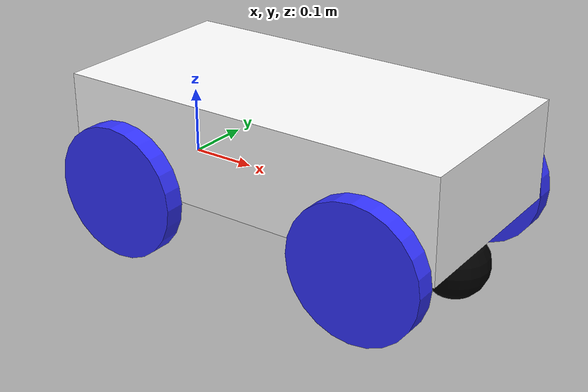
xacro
<?xml version="1.0"?>
<robot xmlns:xacro="http://www.ros.org/wiki/xacro">

    <xacro:include filename="inertial_macros.xacro"/>

    <material name="white"><color rgba="1 1 1 1"/></material>
    <material name="orange"><color rgba="1 0.3 0.1 1"/></material>
    <material name="blue"><color rgba="0.2 0.2 1 1"/></material>
    <material name="black"><color rgba="0 0 0 1"/></material>

    <link name="base_link"></link>

    <joint name="base_footprint_joint" type="fixed">
        <parent link="base_link"/>
        <child link="base_footprint"/>
        <origin xyz="0 0 0" rpy="0 0 0"/>
    </joint>

    <link name="base_footprint"></link>

    <joint name="chassis_joint" type="fixed">
        <parent link="base_link"/>
        <child link="chassis_link"/>
        <origin xyz="-0.1 0 0"/>
    </joint>

    <link name="chassis_link">
        <visual>
            <origin xyz="0.3 0 0.075"/>
            <geometry>
                <box size="0.6 0.3 0.15"/>
            </geometry>
            <material name="white"/>
        </visual>
        <collision>
            <origin xyz="0.3 0 0.075"/>
            <geometry>
                <box size="0.6 0.3 0.15"/>
            </geometry>
        </collision>
        <xacro:inertial_box mass="0.5" x="0.6" y="0.3" z="0.15">
            <origin xyz="0.3 0 0.075" rpy="0 0 0"/>
        </xacro:inertial_box>
    </link>

    <joint name="front_left_wheel_joint" type="continuous">
        <parent link="chassis_link"/>
        <child link="front_left_wheel_link"/>
        <origin xyz="0.5 0.170 0" rpy="${-pi/2} 0 0"/>
        <axis xyz="0 0 1"/>
    </joint>

    <link name="front_left_wheel_link">
        <visual>
            <geometry>
                <cylinder length="0.03" radius="0.1"/>
            </geometry>
            <material name="blue"/>
        </visual>
        <collision>
            <geometry>
                <sphere radius="0.1"/>
            </geometry>
        </collision>
        <xacro:inertial_cylinder mass="0.1" length="0.03" radius="0.1">
            <origin xyz="0 0 0" rpy="0 0 0"/>
        </xacro:inertial_cylinder>
    </link>

    <joint name="front_right_wheel_joint" type="continuous">
        <parent link="chassis_link"/>
        <child link="front_right_wheel_link"/>
        <origin xyz="0.5 -0.170 0" rpy="${pi/2} 0 0"/>
        <axis xyz="0 0 -1"/>
    </joint>

    <link name="front_right_wheel_link">
        <visual>
            <geometry>
                <cylinder length="0.03" radius="0.1"/>
            </geometry>
            <material name="blue"/>
        </visual>
        <collision>
            <geometry>
                <sphere radius="0.1"/>
            </geometry>
        </collision>
        <xacro:inertial_cylinder mass="0.1" length="0.03" radius="0.1">
            <origin xyz="0 0 0" rpy="0 0 0"/>
        </xacro:inertial_cylinder>
    </link>

    <joint name="rear_left_wheel_joint" type="continuous">
        <parent link="chassis_link"/>
        <child link="rear_left_wheel_link"/>
        <origin xyz="0.1 0.170 0" rpy="${-pi/2} 0 0"/>
        <axis xyz="0 0 1"/>
    </joint>

    <link name="rear_left_wheel_link">
        <visual>
            <geometry>
                <cylinder length="0.03" radius="0.1"/>
            </geometry>
            <material name="blue"/>
        </visual>
        <collision>
            <geometry>
                <sphere radius="0.1"/>
            </geometry>
        </collision>
        <xacro:inertial_cylinder mass="0.1" length="0.03" radius="0.1">
            <origin xyz="0 0 0" rpy="0 0 0"/>
        </xacro:inertial_cylinder>
    </link>

    <joint name="rear_right_wheel_joint" type="continuous">
        <parent link="chassis_link"/>
        <child link="rear_right_wheel_link"/>
        <origin xyz="0.1 -0.170 0" rpy="${pi/2} 0 0"/>
        <axis xyz="0 0 -1"/>
    </joint>

    <link name="rear_right_wheel_link">
        <visual>
            <geometry>
                <cylinder length="0.03" radius="0.1"/>
            </geometry>
            <material name="blue"/>
        </visual>
        <collision>
            <geometry>
                <sphere radius="0.1"/>
            </geometry>
        </collision>
        <xacro:inertial_cylinder mass="0.1" length="0.03" radius="0.1">
            <origin xyz="0 0 0" rpy="0 0 0"/>
        </xacro:inertial_cylinder>
    </link>

    <joint name="caster_wheel_joint" type="fixed">
        <parent link="chassis_link"/>
        <child link="caster_wheel_link"/>
        <origin xyz="0.55 0 -0.05" rpy="0 0 0"/>
    </joint>

    <link name="caster_wheel_link">
        <visual>
            <geometry>
                <sphere radius="0.05"/>
            </geometry>
            <material name="black"/>
        </visual>
        <xacro:inertial_sphere mass="0.1" radius="0.05">
            <origin xyz="0.45 0 -0.05" rpy="0 0 0"/>
        </xacro:inertial_sphere>
    </link>

    <gazebo reference="chassis_link">
        <material>Gazebo/Orange</material>
    </gazebo>
    <gazebo reference="caster_wheel_link">
        <material>Gazebo/Black</material>
        <mu1 value="0.001"/>
        <mu2 value="0.001"/>
    </gazebo>
    <gazebo reference="front_left_wheel_link">
        <material>Gazebo/White</material>
        <mu1 value="0.001"/>
        <mu2 value="0.001"/>
    </gazebo>
    <gazebo reference="front_right_wheel_link">
        <material>Gazebo/White</material>
        <mu1 value="0.001"/>
        <mu2 value="0.001"/>
    </gazebo>
</robot>
